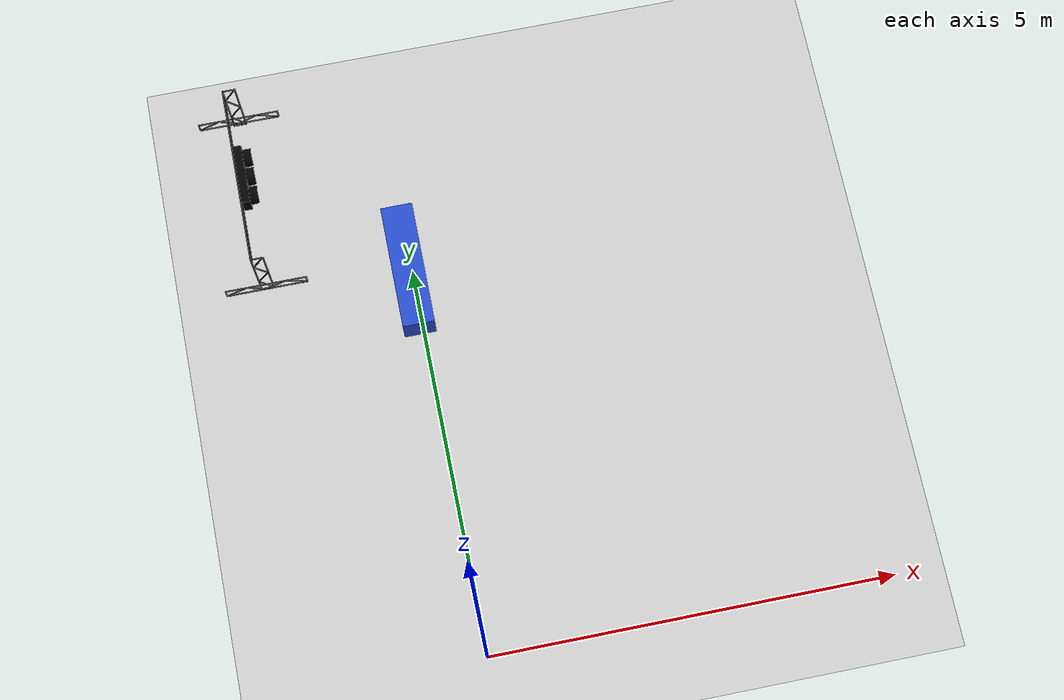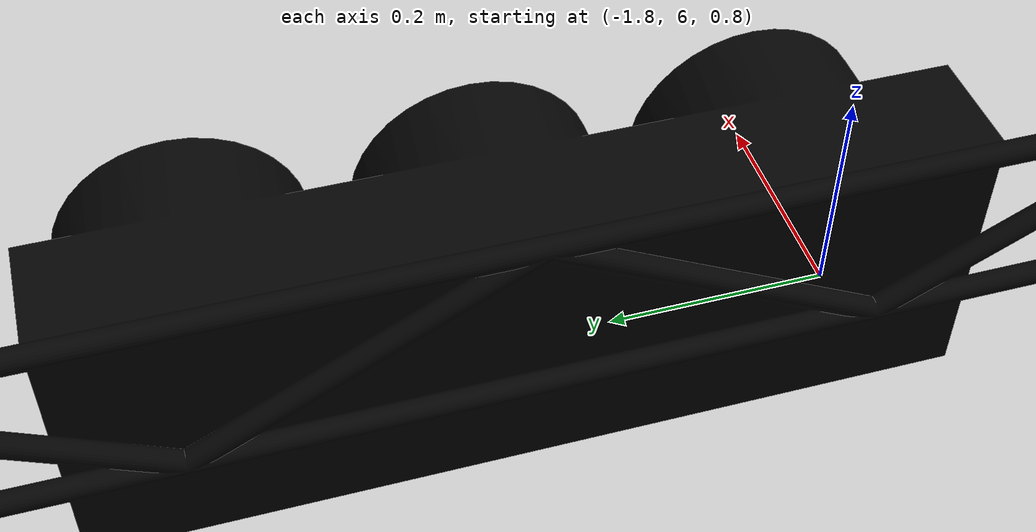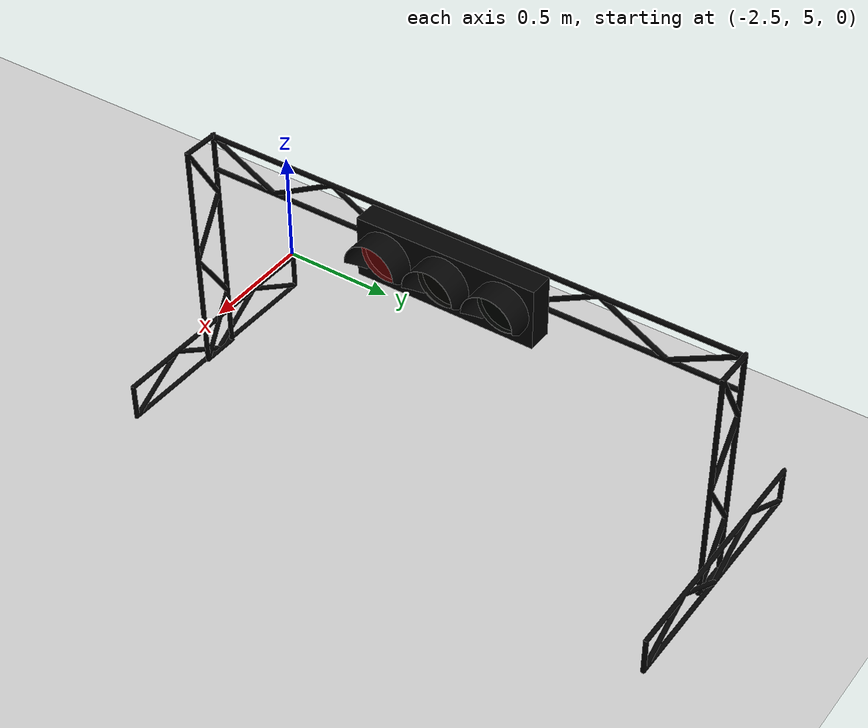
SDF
<sdf version="1.6">
  <world name="default">

  <gui fullscreen='0'>
    <plugin name='keyboard' filename='libKeyboardGUIPlugin.so'/>
      <camera name='user_camera'>
        <pose>0 0 51.4812 3.14159 1.57079 3.14159</pose> <!-- 초기 시점 -->
        <view_controller>orbit</view_controller>
        <projection_type>perspective</projection_type>
      </camera>
  </gui>

  <scene>
    <ambient>0.4 0.4 0.4 1</ambient>
    <background>0.7 0.7 0.7 1</background>
    <shadows>0</shadows>
  </scene>

  <model name='top_camera'> <!-- 모델의 이름 -->
      <link name='top_camera_link'> <!-- 링크 정의 -->
        <inertial>
          <mass>1</mass>
          <inertia>
            <ixx>0.166667</ixx>
            <ixy>0</ixy>
            <ixz>0</ixz>
            <iyy>0.166667</iyy>
            <iyz>0</iyz>
            <izz>0.166667</izz>
          </inertia>
          <pose>0 0 0 0 0 1.57</pose> <!-- 카메라 박스 위치 조정 -->
        </inertial>
        <pose>0 0 0 0 -0 0</pose>
        <gravity>1</gravity>
        <self_collide>0</self_collide>
        <kinematic>0</kinematic>
        <enable_wind>0</enable_wind>
        <visual name='visual'>
          <pose>0 0 0 0 0 1.57</pose> <!-- 카메라 박스 위치 조정 -->
          <geometry>
            <box>
              <size>0.8 0.2 0.2</size>
            </box>
          </geometry>
          <material>
            <lighting>1</lighting>
            <script>
              <uri>file://media/materials/scripts/gazebo.material</uri>
              <name>Gazebo/Blue</name>
            </script>
            <shader type='pixel'>
              <normal_map>__default__</normal_map>
            </shader>
            <ambient>0.3 0.3 0.3 1</ambient>
            <diffuse>0.7 0.7 0.7 1</diffuse>
            <specular>0.01 0.01 0.01 1</specular>
            <emissive>0 0 0 1</emissive>
          </material>
          <transparency>0</transparency>
          <cast_shadows>0</cast_shadows>
        </visual>
        <collision name='collision'>
          <laser_retro>0</laser_retro>
          <max_contacts>10</max_contacts>
          <pose>0 0 0 0 0 1.57</pose> <!-- 카메라 박스 위치 조정 -->
          <geometry>
            <box>
              <size>0.8 0.2 0.2</size>
            </box>
          </geometry>
          <surface>
            <friction>
              <ode>
                <mu>1</mu>
                <mu2>1</mu2>
                <fdir1>0 0 0</fdir1>
                <slip1>0</slip1>
                <slip2>0</slip2>
              </ode>
              <torsional>
                <coefficient>1</coefficient>
                <patch_radius>0</patch_radius>
                <surface_radius>0</surface_radius>
                <use_patch_radius>1</use_patch_radius>
                <ode>
                  <slip>0</slip>
                </ode>
              </torsional>
            </friction>
            <bounce>
              <restitution_coefficient>0</restitution_coefficient>
              <threshold>1e+06</threshold>
            </bounce>
            <contact>
              <collide_without_contact>0</collide_without_contact>
              <collide_without_contact_bitmask>1</collide_without_contact_bitmask>
              <collide_bitmask>1</collide_bitmask>
              <ode>
                <soft_cfm>0</soft_cfm>
                <soft_erp>0.2</soft_erp>
                <kp>1e+13</kp>
                <kd>1</kd>
                <max_vel>0.01</max_vel>
                <min_depth>0</min_depth>
              </ode>
              <bullet>
                <split_impulse>1</split_impulse>
                <split_impulse_penetration_threshold>-0.01</split_impulse_penetration_threshold>
                <soft_cfm>0</soft_cfm>
                <soft_erp>0.2</soft_erp>
                <kp>1e+13</kp>
                <kd>1</kd>
              </bullet>
            </contact>
          </surface>
        </collision>

        <sensor name='top_camera' type='camera'>
          <pose>0 0 0 0 0 0</pose>
          <update_rate>30</update_rate>
          <visualize>0</visualize>
          <camera name='head'>
            <horizontal_fov>1.0856</horizontal_fov>
            <image>
              <width>640</width> <!-- 위성캠 사이즈 조정 -->
              <height>480</height>
              <format>R8G8B8</format>
            </image>
            <clip>
              <near>0.03</near>
              <far>200</far>
            </clip>
            <noise>
              <type>gaussian</type>
              <mean>0</mean>
              <stddev>0.007</stddev>
            </noise>
          </camera>
          <plugin name='top_camera_driver' filename='libgazebo_ros_camera.so'>
            <alwaysOn>1</alwaysOn>
            <updateRate>0.0</updateRate>
            <cameraName>top_camera</cameraName>
            <imageTopicName>image_raw</imageTopicName>
            <cameraInfoTopicName>top_camera_info</cameraInfoTopicName>
            <frameName>camera_link</frameName>
            <hackBaseline>0.07</hackBaseline>
            <distortionK1>0.0</distortionK1>
            <distortionK2>0.0</distortionK2>
            <distortionK3>0.0</distortionK3>
            <distortionT1>0.0</distortionT1>
            <distortionT2>0.0</distortionT2>
          </plugin>
        </sensor>
      </link>
      <static>1</static>
      <allow_auto_disable>1</allow_auto_disable>
      <pose>0 0 13 0 1.57 0</pose> <!-- 카메라 프레임의 위치 조정 -->
    </model>

    <model name="ground">
      <pose>0 0 0 0 0 1.57</pose>
      <static>1</static>

      <link name="ground">
        <collision name="ground_collision">
          <geometry>
            <plane>
              <normal>0 0 1</normal>
              <size>16 12</size>
            </plane>
          </geometry>
          <surface>
            <contact>
              <ode/>
            </contact>
          </surface>
        </collision>

        <visual name="ground_visual">
          <geometry>
            <plane>
              <normal>0 0 1</normal>
              <size>16 12</size>
            </plane>
          </geometry>

          <material>
            <script>
              <uri>model://race_track/materials/scripts</uri>
              <uri>model://race_track/materials/textures</uri>
              <name>track</name>
            </script>
          </material>
        </visual>
      </link>
    </model>

    <!-- Traffic light fixed spawn (migrated from 012_deploy_lib.py random range) -->
    <include>
      <uri>model://traffic_sim</uri>
      <name>traffic_light_stand</name>
      <pose>-1.9 5.15 0 0 0 1.568773</pose>
    </include>

    <include>
      <uri>model://sun</uri>
    </include>

  </world>
</sdf>

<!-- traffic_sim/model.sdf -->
<sdf version='1.7'>

  <model name="traffic_sim">
    <scale>1.0 1.0 1.0</scale>  <!-- global scale disabled; use explicit values below -->
    <static>true</static>

    <!-- 신호등 본체 -->
    <link name="traffic_light_body">
      <visual name="traffic_light_visual">
        <geometry>
          <mesh>
            <uri>model://traffic_sim/meshes/traffic.dae</uri>
            <scale>0.001015 0.001015 0.001015</scale>
          </mesh>
        </geometry>
        <material>
          <ambient>0.01 0.01 0.01 1</ambient>
          <diffuse>0.01 0.01 0.01 1</diffuse>
          <specular>0.1 0.1 0.1 1</specular>
        </material>
      </visual>
    </link>

    <!-- 빨간 불빛 -->
    <link name="red_light_link">
      <pose>0.88725 -0.098 0.8883 1.57 0 0</pose>
      <light name="red" type="spot">
        <pose>0 -0.042 -0.098 2.469999 0 0</pose>
        <attenuation>
          <range>30</range>
          <linear>0.05</linear>
        </attenuation>
        <diffuse>1 0 0 1</diffuse>
        <specular>1 1 1 1</specular>
        <spot>
          <inner_angle>0.3</inner_angle>
          <outer_angle>1.35</outer_angle>
          <falloff>1</falloff>
        </spot>
        <direction>0 0 -1</direction>
      </light>

      <visual name="red">
        <geometry>
          <cylinder>
            <radius>0.105</radius>
            <length>0.035</length>
          </cylinder>
          <sphere>
            <radius>0.14</radius>
          </sphere>
        </geometry>
        <transparency>0.6</transparency>
        <material>
          <ambient> 1 0 0 1</ambient>
          <diffuse> 1 0 0 1</diffuse>
          <specular>1 1 1 1</specular>
          <emissive>1 0 0 1</emissive>
      </material>
      </visual>
    </link>

    <!-- 노란 불빛 -->
    <link name="yellow_light_link">
      <pose>1.141 -0.10255 0.8883 1.57 0 0</pose>
      <light name="yellow" type="spot">
        <pose>0 -0.042 -0.098 2.469999 0 0</pose>
        <attenuation>
          <range>30</range>
          <linear>0.05</linear>
        </attenuation>
        <diffuse>0 0 0 1</diffuse>
        <specular>1 1 1 1</specular>
        <spot>
          <inner_angle>0.3</inner_angle>
          <outer_angle>1.35</outer_angle>
          <falloff>1</falloff>
        </spot>
        <direction>0 0 -1</direction>
      </light>
      <visual name="yellow">
        <geometry>
          <cylinder>
            <radius>0.105</radius>
            <length>0.035</length>
          </cylinder>
          <sphere>
            <radius>0.14</radius>
          </sphere>
        </geometry>
        <transparency>0.6</transparency>
        <material>
          <ambient>0.03 0.03 0 1</ambient>
          <diffuse>0.03 0.03 0 1</diffuse>
          <specular>1 1 1 1</specular>
          <emissive>0 0 0 1 </emissive>
        </material>
      </visual>
    </link>

    <!-- 초록 불빛 -->
    <link name="green_light_link">
      <pose>1.3944 -0.098 0.8883  1.57 0 0</pose>
      <light name="green" type="spot">
        <pose>0 -0.042 -0.098 2.469999 0 0</pose>
        <attenuation>
          <range>30</range>
          <linear>0.05</linear>
        </attenuation>
        <diffuse>0 0 0 1</diffuse>
        <specular>1 1 1 1</specular>
        <spot>
          <inner_angle>0.3</inner_angle>
          <outer_angle>1.35</outer_angle>
          <falloff>1</falloff>
        </spot>
        <direction>0 0 -1</direction>
      </light>

      <visual name="green">
        <geometry>
          <cylinder>
            <radius>0.105</radius>
            <length>0.035</length>
          </cylinder>
          <sphere>
            <radius>0.14</radius>
          </sphere>
        </geometry>
        <transparency>0.6</transparency>
        <material>
          <ambient>0 0.03 0 1</ambient>
          <diffuse>0 0.03 0 1</diffuse>
          <specular>1 1 1 1</specular>
          <emissive>0 0 0 1</emissive>
        </material>
      </visual>
    </link>

    <!-- Manual control is handled by simulation_pkg/traffic_light_keyboard_controller. -->

  </model>
</sdf>
